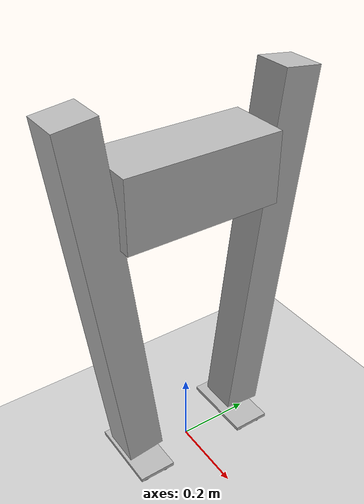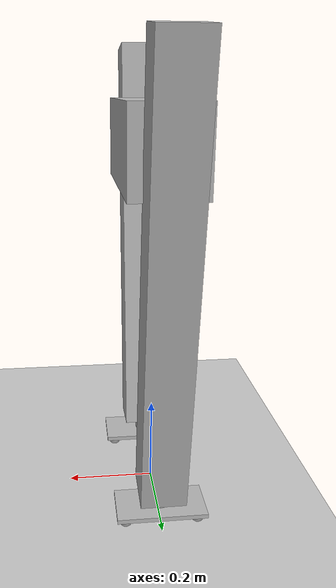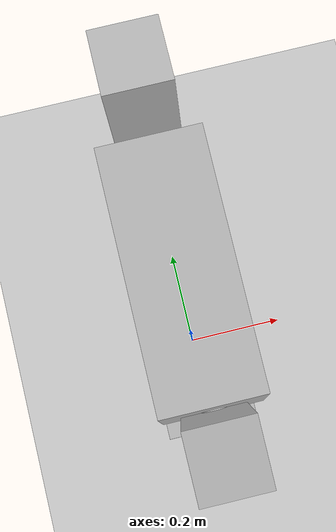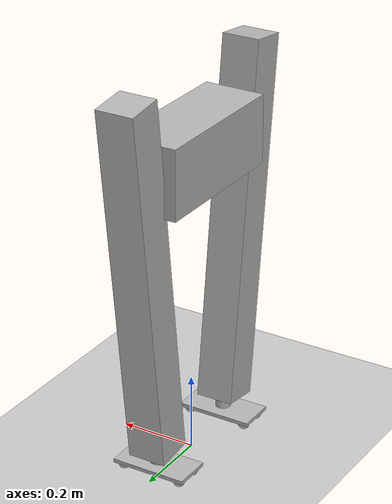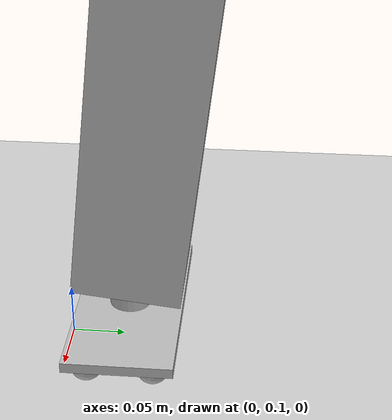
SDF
<sdf version="1.6">
 <world name="default">
  <light name="sun" type="directional">
   <pose>0 0 10 0 -0 0</pose>
   <diffuse>0.8 0.8 0.8 1</diffuse>
   <specular>0.1 0.1 0.1 1</specular>
   <attenuation>
    <range>1000</range>
    <constant>0.9</constant>
    <linear>0.01</linear>
    <quadratic>0.001</quadratic>
   </attenuation>
   <direction>-0.5 0.5 -1</direction>
  </light>
  <model name="ground_plane">
   <static>1</static>
   <link name="link">
    <collision name="collision">
     <geometry><plane><normal>0 0 1</normal><size>100 100</size></plane></geometry>
     <surface>
      <contact>
       <bullet>
        <split_impulse>1</split_impulse>
        <split_impulse_penetration_threshold>-0.05</split_impulse_penetration_threshold>
        <soft_cfm>0</soft_cfm>
        <soft_erp>0.05</soft_erp>
        <kp>1e+16</kp>
        <kd>100</kd>
       </bullet>
      </contact>
     </surface>
     <max_contacts>20</max_contacts>
    </collision>
    <visual name="visual">
     <cast_shadows>0</cast_shadows>
     <geometry><plane><normal>0 0 1</normal><size>100 100</size></plane></geometry>
     <material>
      <script><uri>file://media/materials/scripts/gazebo.material</uri><name>Gazebo/Grey</name></script>
     </material>
    </visual>
   </link>
  </model>
  <gravity>0 0 -9.8</gravity>
  <magnetic_field>6e-06 2.3e-05 -4.2e-05</magnetic_field>
  <atmosphere type="adiabatic"/>
  <physics name="default_physics" default="1" type="bullet">
   <max_step_size>0.001</max_step_size>
   <real_time_factor>1</real_time_factor>
   <real_time_update_rate>1000</real_time_update_rate>
  </physics>
  <scene><ambient>0.4 0.4 0.4 1</ambient><background>0.7 0.7 0.7 1</background><shadows>1</shadows></scene>
  <spherical_coordinates>
   <surface_model>EARTH_WGS84</surface_model>
   <latitude_deg>0</latitude_deg>
   <longitude_deg>0</longitude_deg>
   <elevation>0</elevation>
   <heading_deg>0</heading_deg>
  </spherical_coordinates>
  <model name="slider_gazebo">
   <link name="base_link">
    <inertial>
     <pose>0 0 0.81 0 -0 0</pose>
     <mass>2.5</mass>
     <inertia><ixx>0.18</ixx><ixy>0</ixy><ixz>0</ixz><iyy>0.17</iyy><iyz>0</iyz><izz>0.18</izz></inertia>
    </inertial>
    <collision name="base_link_collision">
     <pose>0 0 0.82 0 -0 0</pose>
     <geometry><box><size>0.16 0.4 0.18</size></box></geometry>
    </collision>
    <visual name="base_link_visual">
     <pose>0 0 0.82 0 -0 0</pose>
     <geometry><box><size>0.16 0.4 0.18</size></box></geometry>
    </visual>
   </link>
   <link name="left_base">
    <pose>0 -0.2 0.82 0 -0 0</pose>
    <inertial>
     <mass>2.12</mass>
     <inertia><ixx>0.8</ixx><ixy>0</ixy><ixz>0</ixz><iyy>0.8</iyy><iyz>0</iyz><izz>0.8</izz></inertia>
    </inertial>
    <collision name="left_base_collision">
     <pose>0 0 0 1.57 -0 0</pose>
     <geometry><cylinder><length>0.01</length><radius>0.02</radius></cylinder></geometry>
    </collision>
    <visual name="left_base_visual">
     <pose>0 0 0 1.57 -0 0</pose>
     <geometry><cylinder><length>0.01</length><radius>0.02</radius></cylinder></geometry>
    </visual>
   </link>
   <joint name="left_hip_pitch" type="revolute">
    <child>left_base</child>
    <parent>base_link</parent>
    <axis>
     <xyz>0 1 0</xyz>
     <limit><lower>-1.5707</lower><upper>1.5707</upper><effort>1000</effort><velocity>1.5</velocity></limit>
     <dynamics><spring_reference>0</spring_reference><spring_stiffness>0</spring_stiffness></dynamics>
     <use_parent_model_frame>1</use_parent_model_frame>
    </axis>
   </joint>
   <link name="left_leg">
    <pose>0 -0.25 0.82 0.12 -0 0</pose>
    <inertial>
     <pose>0 0 -0.27 0 -0 0</pose>
     <mass>1.5</mass>
     <inertia><ixx>0.5</ixx><ixy>0</ixy><ixz>0</ixz><iyy>0.5</iyy><iyz>0</iyz><izz>1.5</izz></inertia>
    </inertial>
    <collision name="left_leg_collision">
     <pose>0 0 -0.27 0 -0 0</pose>
     <geometry><box><size>0.1 0.1 0.96</size></box></geometry>
    </collision>
    <visual name="left_leg_visual">
     <pose>0 0 -0.27 0 -0 0</pose>
     <geometry><box><size>0.1 0.1 0.96</size></box></geometry>
    </visual>
   </link>
   <joint name="left_hip_slide" type="prismatic">
    <child>left_leg</child>
    <parent>left_base</parent>
    <axis>
     <xyz>0 -0.119712 0.992809</xyz>
     <limit><lower>0</lower><upper>0</upper><effort>10000</effort><velocity>1.5</velocity></limit>
     <dynamics><spring_reference>0</spring_reference><spring_stiffness>0</spring_stiffness></dynamics>
     <use_parent_model_frame>1</use_parent_model_frame>
    </axis>
   </joint>
   <link name="left_ankle">
    <pose>0 -0.157822 0.055537 0 -0 0</pose>
    <inertial>
     <mass>0.1</mass>
     <inertia><ixx>0.1</ixx><ixy>0</ixy><ixz>0</ixz><iyy>0.1</iyy><iyz>0</iyz><izz>0.1</izz></inertia>
    </inertial>
    <collision name="left_ankle_collision">
     <geometry><cylinder><length>0.03</length><radius>0.02</radius></cylinder></geometry>
    </collision>
    <visual name="left_ankle_visual">
     <geometry><cylinder><length>0.04</length><radius>0.02</radius></cylinder></geometry>
    </visual>
   </link>
   <joint name="left_ankle_pitch" type="revolute">
    <child>left_ankle</child>
    <parent>left_leg</parent>
    <axis>
     <xyz>0 1 0</xyz>
     <limit><lower>-1</lower><upper>1</upper><effort>1000</effort><velocity>0.5</velocity></limit>
     <dynamics><spring_reference>0</spring_reference><spring_stiffness>0</spring_stiffness></dynamics>
     <use_parent_model_frame>1</use_parent_model_frame>
    </axis>
   </joint>
   <link name="left_foot">
    <pose>0 -0.157822 0.035537 0 -0 0</pose>
    <inertial>
     <mass>0.336</mass>
     <inertia><ixx>0.2</ixx><ixy>0</ixy><ixz>0</ixz><iyy>0.2</iyy><iyz>0</iyz><izz>0.2</izz></inertia>
    </inertial>
    <collision name="left_foot_collision"><geometry><box><size>0.16 0.08 0.01</size></box></geometry></collision>
    <visual name="left_foot_visual"><geometry><box><size>0.2 0.1 0.01</size></box></geometry></visual>
   </link>
   <joint name="left_ankle_roll" type="revolute">
    <child>left_foot</child>
    <parent>left_ankle</parent>
    <axis>
     <xyz>0 0 1</xyz>
     <limit><lower>-1</lower><upper>1</upper><effort>1000</effort><velocity>0.5</velocity></limit>
     <dynamics><spring_reference>0</spring_reference><spring_stiffness>0</spring_stiffness></dynamics>
     <use_parent_model_frame>1</use_parent_model_frame>
    </axis>
   </joint>
   <link name="left_pad1">
    <pose>-0.08 -0.127822 0.025537 0 -0 0</pose>
    <inertial>
     <mass>0.001</mass>
     <inertia><ixx>0.01</ixx><ixy>0</ixy><ixz>0</ixz><iyy>0.01</iyy><iyz>0</iyz><izz>0.01</izz></inertia>
    </inertial>
    <collision name="left_pad1_collision"><geometry><sphere><radius>0.015</radius></sphere></geometry></collision>
    <visual name="left_pad1_visual"><geometry><sphere><radius>0.015</radius></sphere></geometry></visual>
   </link>
   <joint name="left_foot_pad1" type="revolute">
    <child>left_pad1</child>
    <parent>left_foot</parent>
    <axis>
     <xyz>1 0 0</xyz>
     <limit><lower>0</lower><upper>0</upper><effort>1000</effort><velocity>0.5</velocity></limit>
     <dynamics><spring_reference>0</spring_reference><spring_stiffness>0</spring_stiffness></dynamics>
     <use_parent_model_frame>1</use_parent_model_frame>
    </axis>
   </joint>
   <link name="left_pad2">
    <pose>-0.08 -0.187822 0.025537 0 -0 0</pose>
    <inertial>
     <mass>0.001</mass>
     <inertia><ixx>0.01</ixx><ixy>0</ixy><ixz>0</ixz><iyy>0.01</iyy><iyz>0</iyz><izz>0.01</izz></inertia>
    </inertial>
    <collision name="left_pad2_collision"><geometry><sphere><radius>0.015</radius></sphere></geometry></collision>
    <visual name="left_pad2_visual"><geometry><sphere><radius>0.015</radius></sphere></geometry></visual>
   </link>
   <joint name="left_foot_pad2" type="revolute">
    <child>left_pad2</child>
    <parent>left_foot</parent>
    <axis>
     <xyz>1 0 0</xyz>
     <limit><lower>0</lower><upper>0</upper><effort>1000</effort><velocity>0.5</velocity></limit>
     <dynamics><spring_reference>0</spring_reference><spring_stiffness>0</spring_stiffness></dynamics>
     <use_parent_model_frame>1</use_parent_model_frame>
    </axis>
   </joint>
   <link name="left_pad3">
    <pose>0.08 -0.187822 0.025537 0 -0 0</pose>
    <inertial>
     <mass>0.001</mass>
     <inertia><ixx>0.01</ixx><ixy>0</ixy><ixz>0</ixz><iyy>0.01</iyy><iyz>0</iyz><izz>0.01</izz></inertia>
    </inertial>
    <collision name="left_pad3_collision"><geometry><sphere><radius>0.015</radius></sphere></geometry></collision>
    <visual name="left_pad3_visual"><geometry><sphere><radius>0.015</radius></sphere></geometry></visual>
   </link>
   <joint name="left_foot_pad3" type="revolute">
    <child>left_pad3</child>
    <parent>left_foot</parent>
    <axis>
     <xyz>1 0 0</xyz>
     <limit><lower>0</lower><upper>0</upper><effort>1000</effort><velocity>0.5</velocity></limit>
     <dynamics><spring_reference>0</spring_reference><spring_stiffness>0</spring_stiffness></dynamics>
     <use_parent_model_frame>1</use_parent_model_frame>
    </axis>
   </joint>
   <link name="left_pad4">
    <pose>0.08 -0.127822 0.025537 0 -0 0</pose>
    <inertial>
     <mass>0.001</mass>
     <inertia><ixx>0.01</ixx><ixy>0</ixy><ixz>0</ixz><iyy>0.01</iyy><iyz>0</iyz><izz>0.01</izz></inertia>
    </inertial>
    <collision name="left_pad4_collision"><geometry><sphere><radius>0.015</radius></sphere></geometry></collision>
    <visual name="left_pad4_visual"><geometry><sphere><radius>0.015</radius></sphere></geometry></visual>
   </link>
   <joint name="left_foot_pad4" type="revolute">
    <child>left_pad4</child>
    <parent>left_foot</parent>
    <axis>
     <xyz>1 0 0</xyz>
     <limit><lower>0</lower><upper>0</upper><effort>1000</effort><velocity>0.5</velocity></limit>
     <dynamics><spring_reference>0</spring_reference><spring_stiffness>0</spring_stiffness></dynamics>
     <use_parent_model_frame>1</use_parent_model_frame>
    </axis>
   </joint>
   <link name="right_base">
    <pose>0 0.2 0.82 0 -0 0</pose>
    <inertial>
     <mass>2.12</mass>
     <inertia><ixx>0.8</ixx><ixy>0</ixy><ixz>0</ixz><iyy>0.8</iyy><iyz>0</iyz><izz>0.8</izz></inertia>
    </inertial>
    <collision name="right_base_collision">
     <pose>0 0 0 1.57 -0 0</pose>
     <geometry><cylinder><length>0.01</length><radius>0.02</radius></cylinder></geometry>
    </collision>
    <visual name="right_base_visual">
     <pose>0 0 0 1.57 -0 0</pose>
     <geometry><cylinder><length>0.01</length><radius>0.02</radius></cylinder></geometry>
    </visual>
   </link>
   <joint name="right_hip_pitch" type="revolute">
    <child>right_base</child>
    <parent>base_link</parent>
    <axis>
     <xyz>0 1 0</xyz>
     <limit><lower>-1.5707</lower><upper>1.5707</upper><effort>1000</effort><velocity>0.5</velocity></limit>
     <dynamics><spring_reference>0</spring_reference><spring_stiffness>0</spring_stiffness></dynamics>
     <use_parent_model_frame>1</use_parent_model_frame>
    </axis>
   </joint>
   <link name="right_leg">
    <pose>0 0.25 0.82 -0.12 0 0</pose>
    <inertial>
     <pose>0 0 -0.27 0 -0 0</pose>
     <mass>1.5</mass>
     <inertia><ixx>0.5</ixx><ixy>0</ixy><ixz>0</ixz><iyy>0.5</iyy><iyz>0</iyz><izz>1.5</izz></inertia>
    </inertial>
    <collision name="right_leg_collision">
     <pose>0 0 -0.27 0 -0 0</pose>
     <geometry><box><size>0.1 0.1 0.96</size></box></geometry>
    </collision>
    <visual name="right_leg_visual">
     <pose>0 0 -0.27 0 -0 0</pose>
     <geometry><box><size>0.1 0.1 0.96</size></box></geometry>
    </visual>
   </link>
   <joint name="right_hip_slide" type="prismatic">
    <child>right_leg</child>
    <parent>right_base</parent>
    <axis>
     <xyz>0 0.119712 0.992809</xyz>
     <limit><lower>-0</lower><upper>0</upper><effort>10000</effort><velocity>1.5</velocity></limit>
     <dynamics><spring_reference>0</spring_reference><spring_stiffness>0</spring_stiffness></dynamics>
     <use_parent_model_frame>1</use_parent_model_frame>
    </axis>
   </joint>
   <link name="right_ankle">
    <pose>0 0.157822 0.055537 0 -0 0</pose>
    <inertial>
     <mass>0.1</mass>
     <inertia><ixx>0.1</ixx><ixy>0</ixy><ixz>0</ixz><iyy>0.1</iyy><iyz>0</iyz><izz>0.1</izz></inertia>
    </inertial>
    <collision name="right_ankle_collision">
     <geometry><cylinder><length>0.03</length><radius>0.02</radius></cylinder></geometry>
    </collision>
    <visual name="right_ankle_visual">
     <geometry><cylinder><length>0.04</length><radius>0.02</radius></cylinder></geometry>
    </visual>
   </link>
   <joint name="right_ankle_pitch" type="revolute">
    <child>right_ankle</child>
    <parent>right_leg</parent>
    <axis>
     <xyz>0 1 0</xyz>
     <limit><lower>-0.6</lower><upper>0.6</upper><effort>1000</effort><velocity>0.5</velocity></limit>
     <dynamics><spring_reference>0</spring_reference><spring_stiffness>0</spring_stiffness></dynamics>
     <use_parent_model_frame>1</use_parent_model_frame>
    </axis>
   </joint>
   <link name="right_foot">
    <pose>0 0.157822 0.035537 0 -0 0</pose>
    <inertial>
     <mass>0.336</mass>
     <inertia><ixx>0.2</ixx><ixy>0</ixy><ixz>0</ixz><iyy>0.2</iyy><iyz>0</iyz><izz>0.2</izz></inertia>
    </inertial>
    <collision name="right_foot_collision"><geometry><box><size>0.16 0.08 0.01</size></box></geometry></collision>
    <visual name="right_foot_visual"><geometry><box><size>0.2 0.1 0.01</size></box></geometry></visual>
   </link>
   <joint name="right_ankle_roll" type="revolute">
    <child>right_foot</child>
    <parent>right_ankle</parent>
    <axis>
     <xyz>0 0 1</xyz>
     <limit><lower>-0.6</lower><upper>0.6</upper><effort>1000</effort><velocity>0.5</velocity></limit>
     <dynamics><spring_reference>0</spring_reference><spring_stiffness>0</spring_stiffness></dynamics>
     <use_parent_model_frame>1</use_parent_model_frame>
    </axis>
   </joint>
   <link name="right_pad1">
    <pose>-0.08 0.187822 0.025537 0 -0 0</pose>
    <inertial>
     <mass>0.001</mass>
     <inertia><ixx>0.01</ixx><ixy>0</ixy><ixz>0</ixz><iyy>0.01</iyy><iyz>0</iyz><izz>0.01</izz></inertia>
    </inertial>
    <collision name="right_pad1_collision">
     <geometry><sphere><radius>0.015</radius></sphere></geometry>
    </collision>
    <visual name="right_pad1_visual"><geometry><sphere><radius>0.015</radius></sphere></geometry></visual>
   </link>
   <joint name="right_foot_pad1" type="revolute">
    <child>right_pad1</child>
    <parent>right_foot</parent>
    <axis>
     <xyz>1 0 0</xyz>
     <limit><lower>0</lower><upper>0</upper><effort>1000</effort><velocity>0.5</velocity></limit>
     <dynamics><spring_reference>0</spring_reference><spring_stiffness>0</spring_stiffness></dynamics>
     <use_parent_model_frame>1</use_parent_model_frame>
    </axis>
   </joint>
   <link name="right_pad2">
    <pose>-0.08 0.127822 0.025537 0 -0 0</pose>
    <inertial>
     <mass>0.001</mass>
     <inertia><ixx>0.01</ixx><ixy>0</ixy><ixz>0</ixz><iyy>0.01</iyy><iyz>0</iyz><izz>0.01</izz></inertia>
    </inertial>
    <collision name="right_pad2_collision">
     <geometry><sphere><radius>0.015</radius></sphere></geometry>
    </collision>
    <visual name="right_pad2_visual"><geometry><sphere><radius>0.015</radius></sphere></geometry></visual>
   </link>
   <joint name="right_foot_pad2" type="revolute">
    <child>right_pad2</child>
    <parent>right_foot</parent>
    <axis>
     <xyz>1 0 0</xyz>
     <limit><lower>0</lower><upper>0</upper><effort>1000</effort><velocity>0.5</velocity></limit>
     <dynamics><spring_reference>0</spring_reference><spring_stiffness>0</spring_stiffness></dynamics>
     <use_parent_model_frame>1</use_parent_model_frame>
    </axis>
   </joint>
   <link name="right_pad3">
    <pose>0.08 0.127822 0.025537 0 -0 0</pose>
    <inertial>
     <mass>0.001</mass>
     <inertia><ixx>0.01</ixx><ixy>0</ixy><ixz>0</ixz><iyy>0.01</iyy><iyz>0</iyz><izz>0.01</izz></inertia>
    </inertial>
    <collision name="right_pad3_collision">
     <geometry><sphere><radius>0.015</radius></sphere></geometry>
    </collision>
    <visual name="right_pad3_visual"><geometry><sphere><radius>0.015</radius></sphere></geometry></visual>
   </link>
   <joint name="right_foot_pad3" type="revolute">
    <child>right_pad3</child>
    <parent>right_foot</parent>
    <axis>
     <xyz>1 0 0</xyz>
     <limit><lower>0</lower><upper>0</upper><effort>1000</effort><velocity>0.5</velocity></limit>
     <dynamics><spring_reference>0</spring_reference><spring_stiffness>0</spring_stiffness></dynamics>
     <use_parent_model_frame>1</use_parent_model_frame>
    </axis>
   </joint>
   <link name="right_pad4">
    <pose>0.08 0.187822 0.025537 0 -0 0</pose>
    <inertial>
     <mass>0.001</mass>
     <inertia><ixx>0.01</ixx><ixy>0</ixy><ixz>0</ixz><iyy>0.01</iyy><iyz>0</iyz><izz>0.01</izz></inertia>
    </inertial>
    <collision name="right_pad4_collision">
     <geometry><sphere><radius>0.015</radius></sphere></geometry>
    </collision>
    <visual name="right_pad4_visual"><geometry><sphere><radius>0.015</radius></sphere></geometry></visual>
   </link>
   <joint name="right_foot_pad4" type="revolute">
    <child>right_pad4</child>
    <parent>right_foot</parent>
    <axis>
     <xyz>1 0 0</xyz>
     <limit><lower>0</lower><upper>0</upper><effort>1000</effort><velocity>0.5</velocity></limit>
     <dynamics><spring_reference>0</spring_reference><spring_stiffness>0</spring_stiffness></dynamics>
     <use_parent_model_frame>1</use_parent_model_frame>
    </axis>
   </joint>
   <static>0</static>
   <plugin name="gazebo_ros_control" filename="libgazebo_ros_control.so">
    <robotNamespace>slider_gazebo</robotNamespace>
   </plugin>
  </model>
 </world>
</sdf>
